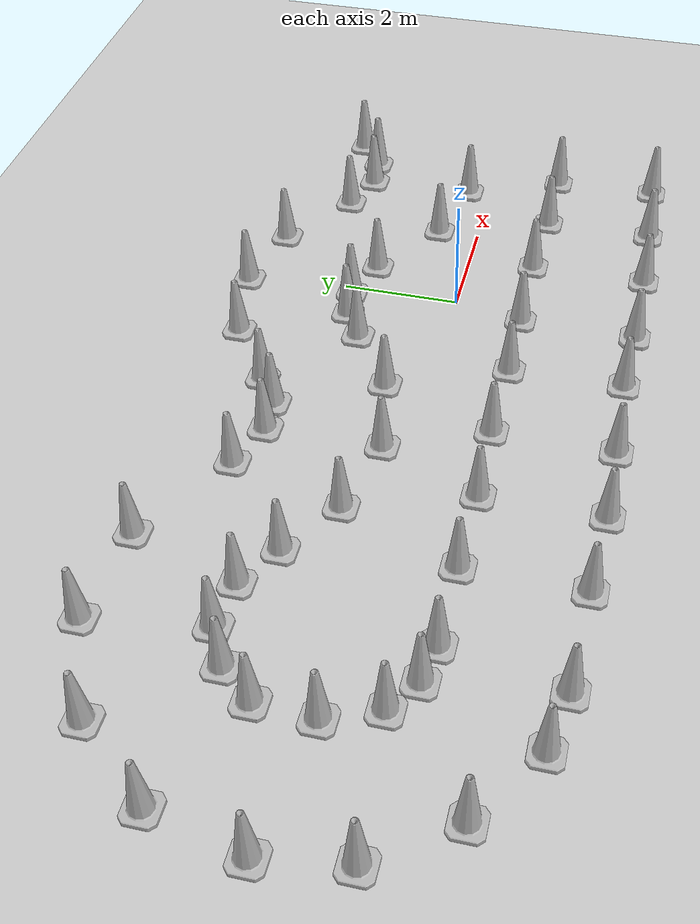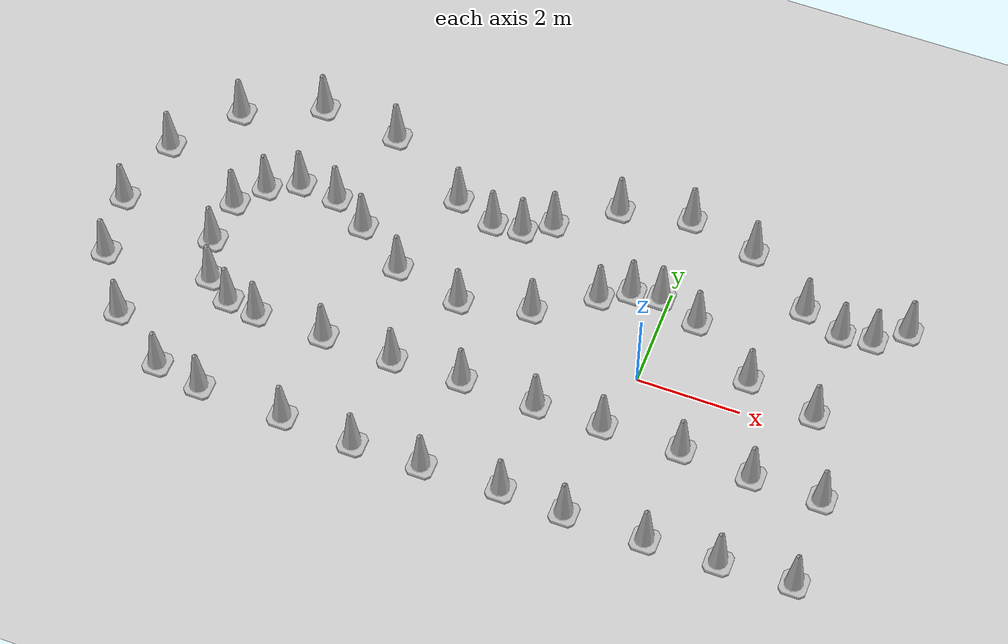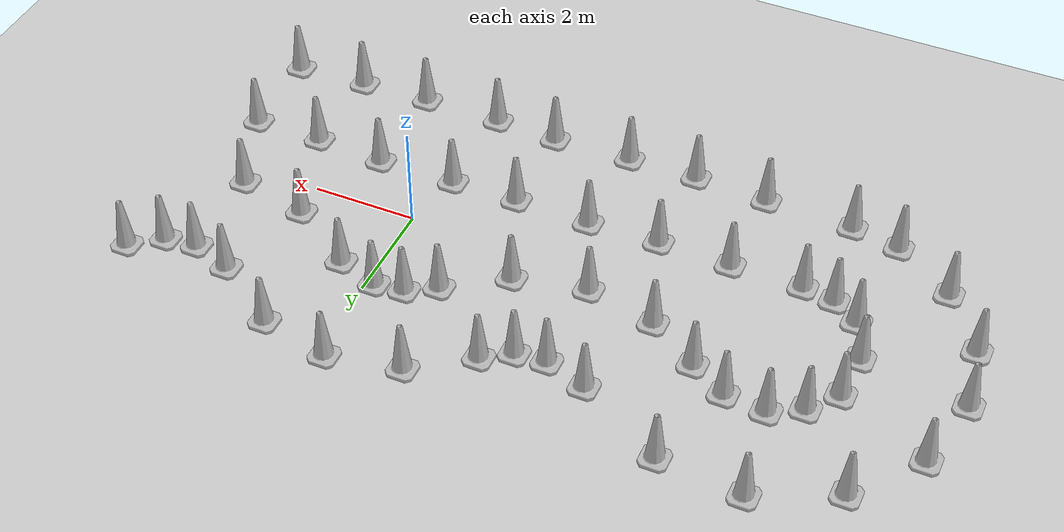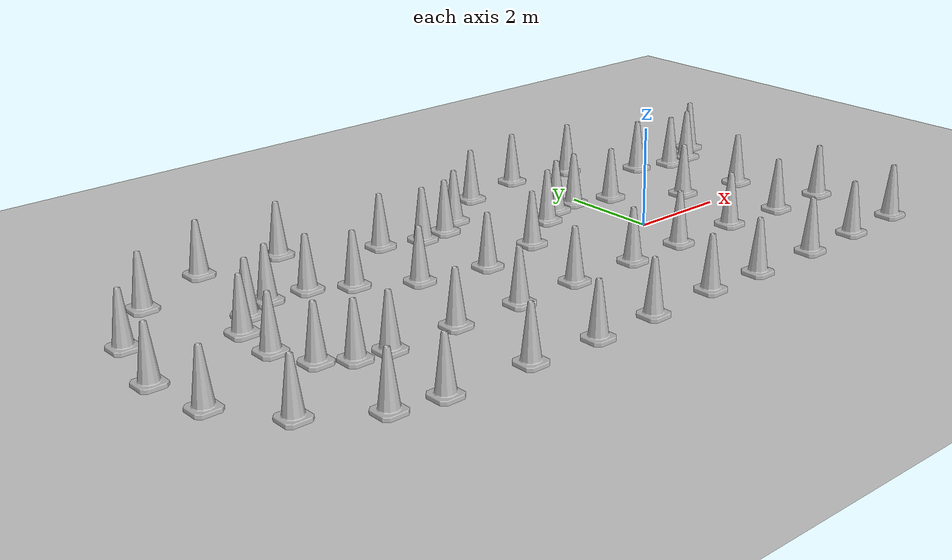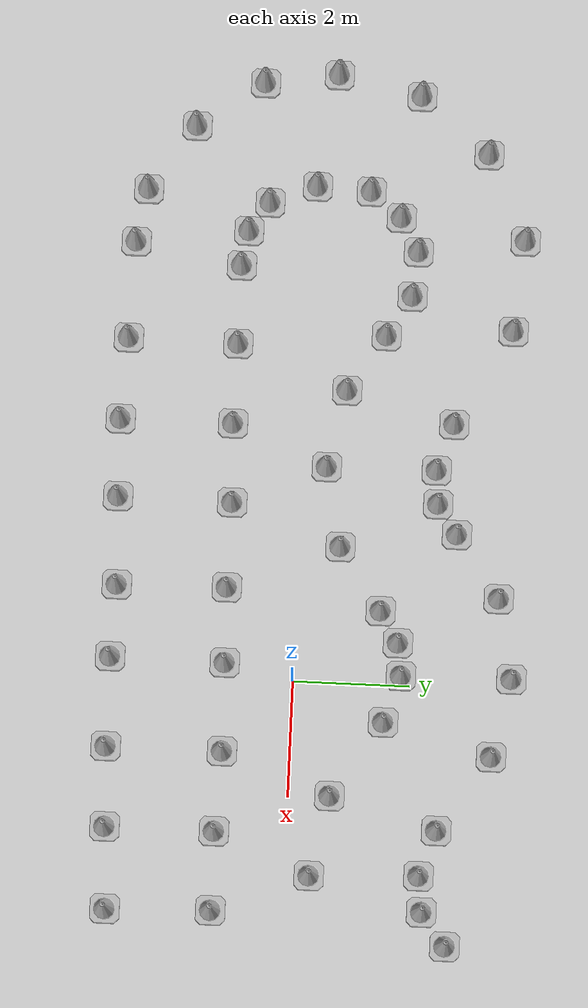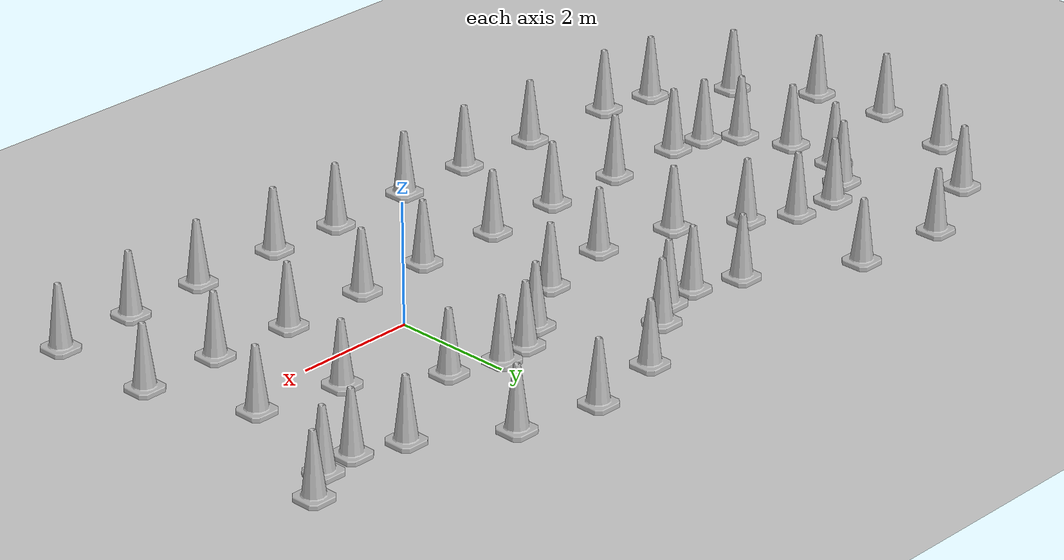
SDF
<sdf version="1.6">
 <world name="default">
  <model name="ground_plane">
   <static>1</static>
   <link name="link">
    <collision name="collision">
     <geometry><plane><normal>0 0 1</normal><size>100 100</size></plane></geometry>
     <surface><friction><ode><mu>100</mu><mu2>50</mu2></ode></friction></surface>
    </collision>
    <visual name="visual">
     <cast_shadows>0</cast_shadows>
     <geometry><plane><normal>0 0 1</normal><size>100 100</size></plane></geometry>
     <material>
      <script><uri>file://media/materials/scripts/gazebo.material</uri><name>Gazebo/Grey</name></script>
     </material>
    </visual>
   </link>
  </model>
  <model name="red_model_2">
   <link name="link">
    <collision name="collision">
     <geometry>
      <mesh><scale>10 10 10</scale><uri>model://construction_cone_red/meshes/construction_cone.dae</uri></mesh>
     </geometry>
    </collision>
    <visual name="visual">
     <geometry>
      <mesh><scale>10 10 10</scale><uri>model://construction_cone_red/meshes/construction_cone.dae</uri></mesh>
     </geometry>
    </visual>
    <inertial>
     <inertia><ixx>1</ixx><ixy>0</ixy><ixz>0</ixz><iyy>1</iyy><iyz>0</iyz><izz>1</izz></inertia>
     <mass>1</mass>
    </inertial>
   </link>
   <pose>3.9852 -1.23 -0 0 -1e-06 0</pose>
  </model>
  <model name="red_model_3">
   <link name="link">
    <collision name="collision">
     <geometry>
      <mesh><scale>10 10 10</scale><uri>model://construction_cone_red/meshes/construction_cone.dae</uri></mesh>
     </geometry>
    </collision>
    <visual name="visual">
     <geometry>
      <mesh><scale>10 10 10</scale><uri>model://construction_cone_red/meshes/construction_cone.dae</uri></mesh>
     </geometry>
    </visual>
    <inertial>
     <inertia><ixx>1</ixx><ixy>0</ixy><ixz>0</ixz><iyy>1</iyy><iyz>0</iyz><izz>1</izz></inertia>
     <mass>1</mass>
    </inertial>
   </link>
   <pose>2.6322 -1.23 -0 0 -1e-06 0</pose>
  </model>
  <model name="red_model_4">
   <link name="link">
    <collision name="collision">
     <geometry>
      <mesh><scale>10 10 10</scale><uri>model://construction_cone_red/meshes/construction_cone.dae</uri></mesh>
     </geometry>
    </collision>
    <visual name="visual">
     <geometry>
      <mesh><scale>10 10 10</scale><uri>model://construction_cone_red/meshes/construction_cone.dae</uri></mesh>
     </geometry>
    </visual>
    <inertial>
     <inertia><ixx>1</ixx><ixy>0</ixy><ixz>0</ixz><iyy>1</iyy><iyz>0</iyz><izz>1</izz></inertia>
     <mass>1</mass>
    </inertial>
   </link>
   <pose>1.2546 -1.1562 -0 0 -1e-06 0</pose>
  </model>
  <model name="red_model_5">
   <link name="link">
    <collision name="collision">
     <geometry>
      <mesh><scale>10 10 10</scale><uri>model://construction_cone_red/meshes/construction_cone.dae</uri></mesh>
     </geometry>
    </collision>
    <visual name="visual">
     <geometry>
      <mesh><scale>10 10 10</scale><uri>model://construction_cone_red/meshes/construction_cone.dae</uri></mesh>
     </geometry>
    </visual>
    <inertial>
     <inertia><ixx>1</ixx><ixy>0</ixy><ixz>0</ixz><iyy>1</iyy><iyz>0</iyz><izz>1</izz></inertia>
     <mass>1</mass>
    </inertial>
   </link>
   <pose>-0.2706 -1.1808 -0 0 -0 0</pose>
  </model>
  <model name="red_model_6">
   <link name="link">
    <collision name="collision">
     <geometry>
      <mesh><scale>10 10 10</scale><uri>model://construction_cone_red/meshes/construction_cone.dae</uri></mesh>
     </geometry>
    </collision>
    <visual name="visual">
     <geometry>
      <mesh><scale>10 10 10</scale><uri>model://construction_cone_red/meshes/construction_cone.dae</uri></mesh>
     </geometry>
    </visual>
    <inertial>
     <inertia><ixx>1</ixx><ixy>0</ixy><ixz>0</ixz><iyy>1</iyy><iyz>0</iyz><izz>1</izz></inertia>
     <mass>1</mass>
    </inertial>
   </link>
   <pose>-1.5744 -1.2054 -0 0 -1e-06 0</pose>
  </model>
  <model name="red_model_7">
   <link name="link">
    <collision name="collision">
     <geometry>
      <mesh><scale>10 10 10</scale><uri>model://construction_cone_red/meshes/construction_cone.dae</uri></mesh>
     </geometry>
    </collision>
    <visual name="visual">
     <geometry>
      <mesh><scale>10 10 10</scale><uri>model://construction_cone_red/meshes/construction_cone.dae</uri></mesh>
     </geometry>
    </visual>
    <inertial>
     <inertia><ixx>1</ixx><ixy>0</ixy><ixz>0</ixz><iyy>1</iyy><iyz>0</iyz><izz>1</izz></inertia>
     <mass>1</mass>
    </inertial>
   </link>
   <pose>-3.0504 -1.1808 -0 0 -1e-06 0</pose>
  </model>
  <model name="red_model_8">
   <link name="link">
    <collision name="collision">
     <geometry>
      <mesh><scale>10 10 10</scale><uri>model://construction_cone_red/meshes/construction_cone.dae</uri></mesh>
     </geometry>
    </collision>
    <visual name="visual">
     <geometry>
      <mesh><scale>10 10 10</scale><uri>model://construction_cone_red/meshes/construction_cone.dae</uri></mesh>
     </geometry>
    </visual>
    <inertial>
     <inertia><ixx>1</ixx><ixy>0</ixy><ixz>0</ixz><iyy>1</iyy><iyz>0</iyz><izz>1</izz></inertia>
     <mass>1</mass>
    </inertial>
   </link>
   <pose>-4.428 -1.23 -0 0 -1e-06 0</pose>
  </model>
  <model name="red_model_9">
   <link name="link">
    <collision name="collision">
     <geometry>
      <mesh><scale>10 10 10</scale><uri>model://construction_cone_red/meshes/construction_cone.dae</uri></mesh>
     </geometry>
    </collision>
    <visual name="visual">
     <geometry>
      <mesh><scale>10 10 10</scale><uri>model://construction_cone_red/meshes/construction_cone.dae</uri></mesh>
     </geometry>
    </visual>
    <inertial>
     <inertia><ixx>1</ixx><ixy>0</ixy><ixz>0</ixz><iyy>1</iyy><iyz>0</iyz><izz>1</izz></inertia>
     <mass>1</mass>
    </inertial>
   </link>
   <pose>-5.8302 -1.2054 -0 0 -1e-06 0</pose>
  </model>
  <model name="red_model_10">
   <link name="link">
    <collision name="collision">
     <geometry>
      <mesh><scale>10 10 10</scale><uri>model://construction_cone_red/meshes/construction_cone.dae</uri></mesh>
     </geometry>
    </collision>
    <visual name="visual">
     <geometry>
      <mesh><scale>10 10 10</scale><uri>model://construction_cone_red/meshes/construction_cone.dae</uri></mesh>
     </geometry>
    </visual>
    <inertial>
     <inertia><ixx>1</ixx><ixy>0</ixy><ixz>0</ixz><iyy>1</iyy><iyz>0</iyz><izz>1</izz></inertia>
     <mass>1</mass>
    </inertial>
   </link>
   <pose>-7.2078 -1.2054 -0 0 -1e-06 0</pose>
  </model>
  <model name="red_model_11">
   <link name="link">
    <collision name="collision">
     <geometry>
      <mesh><scale>10 10 10</scale><uri>model://construction_cone_red/meshes/construction_cone.dae</uri></mesh>
     </geometry>
    </collision>
    <visual name="visual">
     <geometry>
      <mesh><scale>10 10 10</scale><uri>model://construction_cone_red/meshes/construction_cone.dae</uri></mesh>
     </geometry>
    </visual>
    <inertial>
     <inertia><ixx>1</ixx><ixy>0</ixy><ixz>0</ixz><iyy>1</iyy><iyz>0</iyz><izz>1</izz></inertia>
     <mass>1</mass>
    </inertial>
   </link>
   <pose>-7.8228 -1.107 -0 0 -1e-06 0</pose>
  </model>
  <model name="red_model_12">
   <link name="link">
    <collision name="collision">
     <geometry>
      <mesh><scale>10 10 10</scale><uri>model://construction_cone_red/meshes/construction_cone.dae</uri></mesh>
     </geometry>
    </collision>
    <visual name="visual">
     <geometry>
      <mesh><scale>10 10 10</scale><uri>model://construction_cone_red/meshes/construction_cone.dae</uri></mesh>
     </geometry>
    </visual>
    <inertial>
     <inertia><ixx>1</ixx><ixy>0</ixy><ixz>0</ixz><iyy>1</iyy><iyz>0</iyz><izz>1</izz></inertia>
     <mass>1</mass>
    </inertial>
   </link>
   <pose>-8.3394 -0.7626 -8e-06 1e-06 -0 0</pose>
  </model>
  <model name="red_model_13">
   <link name="link">
    <collision name="collision">
     <geometry>
      <mesh><scale>10 10 10</scale><uri>model://construction_cone_red/meshes/construction_cone.dae</uri></mesh>
     </geometry>
    </collision>
    <visual name="visual">
     <geometry>
      <mesh><scale>10 10 10</scale><uri>model://construction_cone_red/meshes/construction_cone.dae</uri></mesh>
     </geometry>
    </visual>
    <inertial>
     <inertia><ixx>1</ixx><ixy>0</ixy><ixz>0</ixz><iyy>1</iyy><iyz>0</iyz><izz>1</izz></inertia>
     <mass>1</mass>
    </inertial>
   </link>
   <pose>3.321 0.4182 -0 0 -0 0</pose>
  </model>
  <model name="red_model_14">
   <link name="link">
    <collision name="collision">
     <geometry>
      <mesh><scale>10 10 10</scale><uri>model://construction_cone_red/meshes/construction_cone.dae</uri></mesh>
     </geometry>
    </collision>
    <visual name="visual">
     <geometry>
      <mesh><scale>10 10 10</scale><uri>model://construction_cone_red/meshes/construction_cone.dae</uri></mesh>
     </geometry>
    </visual>
    <inertial>
     <inertia><ixx>1</ixx><ixy>0</ixy><ixz>0</ixz><iyy>1</iyy><iyz>0</iyz><izz>1</izz></inertia>
     <mass>1</mass>
    </inertial>
   </link>
   <pose>-8.6592 0.0492 -0 0 -1e-06 0</pose>
  </model>
  <model name="red_model_15">
   <link name="link">
    <collision name="collision">
     <geometry>
      <mesh><scale>10 10 10</scale><uri>model://construction_cone_red/meshes/construction_cone.dae</uri></mesh>
     </geometry>
    </collision>
    <visual name="visual">
     <geometry>
      <mesh><scale>10 10 10</scale><uri>model://construction_cone_red/meshes/construction_cone.dae</uri></mesh>
     </geometry>
    </visual>
    <inertial>
     <inertia><ixx>1</ixx><ixy>0</ixy><ixz>0</ixz><iyy>1</iyy><iyz>0</iyz><izz>1</izz></inertia>
     <mass>1</mass>
    </inertial>
   </link>
   <pose>-3.7392 0.4182 0 -0 -0 -0</pose>
  </model>
  <model name="red_model_17">
   <link name="link">
    <collision name="collision">
     <geometry>
      <mesh><scale>10 10 10</scale><uri>model://construction_cone_red/meshes/construction_cone.dae</uri></mesh>
     </geometry>
    </collision>
    <visual name="visual">
     <geometry>
      <mesh><scale>10 10 10</scale><uri>model://construction_cone_red/meshes/construction_cone.dae</uri></mesh>
     </geometry>
    </visual>
    <inertial>
     <inertia><ixx>1</ixx><ixy>0</ixy><ixz>0</ixz><iyy>1</iyy><iyz>0</iyz><izz>1</izz></inertia>
     <mass>1</mass>
    </inertial>
   </link>
   <pose>1.9434 0.7134 -0 0 -1e-06 0</pose>
  </model>
  <model name="red_model_18">
   <link name="link">
    <collision name="collision">
     <geometry>
      <mesh><scale>10 10 10</scale><uri>model://construction_cone_red/meshes/construction_cone.dae</uri></mesh>
     </geometry>
    </collision>
    <visual name="visual">
     <geometry>
      <mesh><scale>10 10 10</scale><uri>model://construction_cone_red/meshes/construction_cone.dae</uri></mesh>
     </geometry>
    </visual>
    <inertial>
     <inertia><ixx>1</ixx><ixy>0</ixy><ixz>0</ixz><iyy>1</iyy><iyz>0</iyz><izz>1</izz></inertia>
     <mass>1</mass>
    </inertial>
   </link>
   <pose>-2.3616 0.7134 -0 0 -1e-06 0</pose>
  </model>
  <model name="red_model_19">
   <link name="link">
    <collision name="collision">
     <geometry>
      <mesh><scale>10 10 10</scale><uri>model://construction_cone_red/meshes/construction_cone.dae</uri></mesh>
     </geometry>
    </collision>
    <visual name="visual">
     <geometry>
      <mesh><scale>10 10 10</scale><uri>model://construction_cone_red/meshes/construction_cone.dae</uri></mesh>
     </geometry>
    </visual>
    <inertial>
     <inertia><ixx>1</ixx><ixy>0</ixy><ixz>0</ixz><iyy>1</iyy><iyz>0</iyz><izz>1</izz></inertia>
     <mass>1</mass>
    </inertial>
   </link>
   <pose>-5.0922 0.7134 -9e-06 0 -0 0</pose>
  </model>
  <model name="red_model_20">
   <link name="link">
    <collision name="collision">
     <geometry>
      <mesh><scale>10 10 10</scale><uri>model://construction_cone_red/meshes/construction_cone.dae</uri></mesh>
     </geometry>
    </collision>
    <visual name="visual">
     <geometry>
      <mesh><scale>10 10 10</scale><uri>model://construction_cone_red/meshes/construction_cone.dae</uri></mesh>
     </geometry>
    </visual>
    <inertial>
     <inertia><ixx>1</ixx><ixy>0</ixy><ixz>0</ixz><iyy>1</iyy><iyz>0</iyz><izz>1</izz></inertia>
     <mass>1</mass>
    </inertial>
   </link>
   <pose>-8.61 0.984 -0 0 -1e-06 0</pose>
  </model>
  <model name="red_model_21">
   <link name="link">
    <collision name="collision">
     <geometry>
      <mesh><scale>10 10 10</scale><uri>model://construction_cone_red/meshes/construction_cone.dae</uri></mesh>
     </geometry>
    </collision>
    <visual name="visual">
     <geometry>
      <mesh><scale>10 10 10</scale><uri>model://construction_cone_red/meshes/construction_cone.dae</uri></mesh>
     </geometry>
    </visual>
    <inertial>
     <inertia><ixx>1</ixx><ixy>0</ixy><ixz>0</ixz><iyy>1</iyy><iyz>0</iyz><izz>1</izz></inertia>
     <mass>1</mass>
    </inertial>
   </link>
   <pose>-1.2792 1.4514 -9e-06 0 -0 0</pose>
  </model>
  <model name="red_model_22">
   <link name="link">
    <collision name="collision">
     <geometry>
      <mesh><scale>10 10 10</scale><uri>model://construction_cone_red/meshes/construction_cone.dae</uri></mesh>
     </geometry>
    </collision>
    <visual name="visual">
     <geometry>
      <mesh><scale>10 10 10</scale><uri>model://construction_cone_red/meshes/construction_cone.dae</uri></mesh>
     </geometry>
    </visual>
    <inertial>
     <inertia><ixx>1</ixx><ixy>0</ixy><ixz>0</ixz><iyy>1</iyy><iyz>0</iyz><izz>1</izz></inertia>
     <mass>1</mass>
    </inertial>
   </link>
   <pose>-6.0762 1.353 -0 0 -1e-06 0</pose>
  </model>
  <model name="red_model_24">
   <link name="link">
    <collision name="collision">
     <geometry>
      <mesh><scale>10 10 10</scale><uri>model://construction_cone_red/meshes/construction_cone.dae</uri></mesh>
     </geometry>
    </collision>
    <visual name="visual">
     <geometry>
      <mesh><scale>10 10 10</scale><uri>model://construction_cone_red/meshes/construction_cone.dae</uri></mesh>
     </geometry>
    </visual>
    <inertial>
     <inertia><ixx>1</ixx><ixy>0</ixy><ixz>0</ixz><iyy>1</iyy><iyz>0</iyz><izz>1</izz></inertia>
     <mass>1</mass>
    </inertial>
   </link>
   <pose>-8.1672 1.5252 -0 0 -0 0</pose>
  </model>
  <model name="red_model_25">
   <link name="link">
    <collision name="collision">
     <geometry>
      <mesh><scale>10 10 10</scale><uri>model://construction_cone_red/meshes/construction_cone.dae</uri></mesh>
     </geometry>
    </collision>
    <visual name="visual">
     <geometry>
      <mesh><scale>10 10 10</scale><uri>model://construction_cone_red/meshes/construction_cone.dae</uri></mesh>
     </geometry>
    </visual>
    <inertial>
     <inertia><ixx>1</ixx><ixy>0</ixy><ixz>0</ixz><iyy>1</iyy><iyz>0</iyz><izz>1</izz></inertia>
     <mass>1</mass>
    </inertial>
   </link>
   <pose>0.6396 1.5744 -0 0 -1e-06 0</pose>
  </model>
  <model name="red_model_26">
   <link name="link">
    <collision name="collision">
     <geometry>
      <mesh><scale>10 10 10</scale><uri>model://construction_cone_red/meshes/construction_cone.dae</uri></mesh>
     </geometry>
    </collision>
    <visual name="visual">
     <geometry>
      <mesh><scale>10 10 10</scale><uri>model://construction_cone_red/meshes/construction_cone.dae</uri></mesh>
     </geometry>
    </visual>
    <inertial>
     <inertia><ixx>1</ixx><ixy>0</ixy><ixz>0</ixz><iyy>1</iyy><iyz>0</iyz><izz>1</izz></inertia>
     <mass>1</mass>
    </inertial>
   </link>
   <pose>-0.738 1.7712 -0 0 -0 0</pose>
  </model>
  <model name="red_model_28">
   <link name="link">
    <collision name="collision">
     <geometry>
      <mesh><scale>10 10 10</scale><uri>model://construction_cone_red/meshes/construction_cone.dae</uri></mesh>
     </geometry>
    </collision>
    <visual name="visual">
     <geometry>
      <mesh><scale>10 10 10</scale><uri>model://construction_cone_red/meshes/construction_cone.dae</uri></mesh>
     </geometry>
    </visual>
    <inertial>
     <inertia><ixx>1</ixx><ixy>0</ixy><ixz>0</ixz><iyy>1</iyy><iyz>0</iyz><izz>1</izz></inertia>
     <mass>1</mass>
    </inertial>
   </link>
   <pose>-6.7896 1.7712 -0 0 -1e-06 0</pose>
  </model>
  <model name="red_model_29">
   <link name="link">
    <collision name="collision">
     <geometry>
      <mesh><scale>10 10 10</scale><uri>model://construction_cone_red/meshes/construction_cone.dae</uri></mesh>
     </geometry>
    </collision>
    <visual name="visual">
     <geometry>
      <mesh><scale>10 10 10</scale><uri>model://construction_cone_red/meshes/construction_cone.dae</uri></mesh>
     </geometry>
    </visual>
    <inertial>
     <inertia><ixx>1</ixx><ixy>0</ixy><ixz>0</ixz><iyy>1</iyy><iyz>0</iyz><izz>1</izz></inertia>
     <mass>1</mass>
    </inertial>
   </link>
   <pose>-7.5768 1.845 -0 0 -1e-06 0</pose>
  </model>
  <model name="red_model_31">
   <link name="link">
    <collision name="collision">
     <geometry>
      <mesh><scale>10 10 10</scale><uri>model://construction_cone_red/meshes/construction_cone.dae</uri></mesh>
     </geometry>
    </collision>
    <visual name="visual">
     <geometry>
      <mesh><scale>10 10 10</scale><uri>model://construction_cone_red/meshes/construction_cone.dae</uri></mesh>
     </geometry>
    </visual>
    <inertial>
     <inertia><ixx>1</ixx><ixy>0</ixy><ixz>0</ixz><iyy>1</iyy><iyz>0</iyz><izz>1</izz></inertia>
     <mass>1</mass>
    </inertial>
   </link>
   <pose>-0.1722 1.845 -0 -0 -0 -0</pose>
  </model>
  <model name="blue_model_0">
   <link name="link">
    <collision name="collision">
     <geometry>
      <mesh><scale>10 10 10</scale><uri>model://construction_cone_blue/meshes/construction_cone.dae</uri></mesh>
     </geometry>
    </collision>
    <visual name="visual">
     <geometry>
      <mesh><scale>10 10 10</scale><uri>model://construction_cone_blue/meshes/construction_cone.dae</uri></mesh>
     </geometry>
    </visual>
    <inertial>
     <inertia><ixx>1</ixx><ixy>0</ixy><ixz>0</ixz><iyy>1</iyy><iyz>0</iyz><izz>1</izz></inertia>
     <mass>1</mass>
    </inertial>
   </link>
   <pose>1.2546 -3.1488 -8e-06 1e-06 -0 0</pose>
  </model>
  <model name="blue_model_1">
   <link name="link">
    <collision name="collision">
     <geometry>
      <mesh><scale>10 10 10</scale><uri>model://construction_cone_blue/meshes/construction_cone.dae</uri></mesh>
     </geometry>
    </collision>
    <visual name="visual">
     <geometry>
      <mesh><scale>10 10 10</scale><uri>model://construction_cone_blue/meshes/construction_cone.dae</uri></mesh>
     </geometry>
    </visual>
    <inertial>
     <inertia><ixx>1</ixx><ixy>0</ixy><ixz>0</ixz><iyy>1</iyy><iyz>0</iyz><izz>1</izz></inertia>
     <mass>1</mass>
    </inertial>
   </link>
   <pose>-0.2952 -3.1488 -0 0 -1e-06 0</pose>
  </model>
  <model name="blue_model_2">
   <link name="link">
    <collision name="collision">
     <geometry>
      <mesh><scale>10 10 10</scale><uri>model://construction_cone_blue/meshes/construction_cone.dae</uri></mesh>
     </geometry>
    </collision>
    <visual name="visual">
     <geometry>
      <mesh><scale>10 10 10</scale><uri>model://construction_cone_blue/meshes/construction_cone.dae</uri></mesh>
     </geometry>
    </visual>
    <inertial>
     <inertia><ixx>1</ixx><ixy>0</ixy><ixz>0</ixz><iyy>1</iyy><iyz>0</iyz><izz>1</izz></inertia>
     <mass>1</mass>
    </inertial>
   </link>
   <pose>-3.075 -3.1488 -0 0 -1e-06 0</pose>
  </model>
  <model name="blue_model_4">
   <link name="link">
    <collision name="collision">
     <geometry>
      <mesh><scale>10 10 10</scale><uri>model://construction_cone_blue/meshes/construction_cone.dae</uri></mesh>
     </geometry>
    </collision>
    <visual name="visual">
     <geometry>
      <mesh><scale>10 10 10</scale><uri>model://construction_cone_blue/meshes/construction_cone.dae</uri></mesh>
     </geometry>
    </visual>
    <inertial>
     <inertia><ixx>1</ixx><ixy>0</ixy><ixz>0</ixz><iyy>1</iyy><iyz>0</iyz><izz>1</izz></inertia>
     <mass>1</mass>
    </inertial>
   </link>
   <pose>2.6322 -3.0996 -0 0 -1e-06 0</pose>
  </model>
  <model name="blue_model_5">
   <link name="link">
    <collision name="collision">
     <geometry>
      <mesh><scale>10 10 10</scale><uri>model://construction_cone_blue/meshes/construction_cone.dae</uri></mesh>
     </geometry>
    </collision>
    <visual name="visual">
     <geometry>
      <mesh><scale>10 10 10</scale><uri>model://construction_cone_blue/meshes/construction_cone.dae</uri></mesh>
     </geometry>
    </visual>
    <inertial>
     <inertia><ixx>1</ixx><ixy>0</ixy><ixz>0</ixz><iyy>1</iyy><iyz>0</iyz><izz>1</izz></inertia>
     <mass>1</mass>
    </inertial>
   </link>
   <pose>-4.42764 -3.17179 -0 0 0 -0.003223</pose>
  </model>
  <model name="blue_model_6">
   <link name="link">
    <collision name="collision">
     <geometry>
      <mesh><scale>10 10 10</scale><uri>model://construction_cone_blue/meshes/construction_cone.dae</uri></mesh>
     </geometry>
    </collision>
    <visual name="visual">
     <geometry>
      <mesh><scale>10 10 10</scale><uri>model://construction_cone_blue/meshes/construction_cone.dae</uri></mesh>
     </geometry>
    </visual>
    <inertial>
     <inertia><ixx>1</ixx><ixy>0</ixy><ixz>0</ixz><iyy>1</iyy><iyz>0</iyz><izz>1</izz></inertia>
     <mass>1</mass>
    </inertial>
   </link>
   <pose>-5.8548 -3.0996 -0 0 -0 0</pose>
  </model>
  <model name="blue_model_7">
   <link name="link">
    <collision name="collision">
     <geometry>
      <mesh><scale>10 10 10</scale><uri>model://construction_cone_blue/meshes/construction_cone.dae</uri></mesh>
     </geometry>
    </collision>
    <visual name="visual">
     <geometry>
      <mesh><scale>10 10 10</scale><uri>model://construction_cone_blue/meshes/construction_cone.dae</uri></mesh>
     </geometry>
    </visual>
    <inertial>
     <inertia><ixx>1</ixx><ixy>0</ixy><ixz>0</ixz><iyy>1</iyy><iyz>0</iyz><izz>1</izz></inertia>
     <mass>1</mass>
    </inertial>
   </link>
   <pose>-7.5522 -3.0504 -0 0 -1e-06 0</pose>
  </model>
  <model name="blue_model_8">
   <link name="link">
    <collision name="collision">
     <geometry>
      <mesh><scale>10 10 10</scale><uri>model://construction_cone_blue/meshes/construction_cone.dae</uri></mesh>
     </geometry>
    </collision>
    <visual name="visual">
     <geometry>
      <mesh><scale>10 10 10</scale><uri>model://construction_cone_blue/meshes/construction_cone.dae</uri></mesh>
     </geometry>
    </visual>
    <inertial>
     <inertia><ixx>1</ixx><ixy>0</ixy><ixz>0</ixz><iyy>1</iyy><iyz>0</iyz><izz>1</izz></inertia>
     <mass>1</mass>
    </inertial>
   </link>
   <pose>-8.487 -2.8782 -0 0 -1e-06 0</pose>
  </model>
  <model name="blue_model_11">
   <link name="link">
    <collision name="collision">
     <geometry>
      <mesh><scale>10 10 10</scale><uri>model://construction_cone_blue/meshes/construction_cone.dae</uri></mesh>
     </geometry>
    </collision>
    <visual name="visual">
     <geometry>
      <mesh><scale>10 10 10</scale><uri>model://construction_cone_blue/meshes/construction_cone.dae</uri></mesh>
     </geometry>
    </visual>
    <inertial>
     <inertia><ixx>1</ixx><ixy>0</ixy><ixz>0</ixz><iyy>1</iyy><iyz>0</iyz><izz>1</izz></inertia>
     <mass>1</mass>
    </inertial>
   </link>
   <pose>-9.6432 -2.091 -1e-05 -0 -0 -0</pose>
  </model>
  <model name="blue_model_13">
   <link name="link">
    <collision name="collision">
     <geometry>
      <mesh><scale>10 10 10</scale><uri>model://construction_cone_blue/meshes/construction_cone.dae</uri></mesh>
     </geometry>
    </collision>
    <visual name="visual">
     <geometry>
      <mesh><scale>10 10 10</scale><uri>model://construction_cone_blue/meshes/construction_cone.dae</uri></mesh>
     </geometry>
    </visual>
    <inertial>
     <inertia><ixx>1</ixx><ixy>0</ixy><ixz>0</ixz><iyy>1</iyy><iyz>0</iyz><izz>1</izz></inertia>
     <mass>1</mass>
    </inertial>
   </link>
   <pose>-10.455 -0.9348 -0 0 -1e-06 0</pose>
  </model>
  <model name="blue_model_14">
   <link name="link">
    <collision name="collision">
     <geometry>
      <mesh><scale>10 10 10</scale><uri>model://construction_cone_blue/meshes/construction_cone.dae</uri></mesh>
     </geometry>
    </collision>
    <visual name="visual">
     <geometry>
      <mesh><scale>10 10 10</scale><uri>model://construction_cone_blue/meshes/construction_cone.dae</uri></mesh>
     </geometry>
    </visual>
    <inertial>
     <inertia><ixx>1</ixx><ixy>0</ixy><ixz>0</ixz><iyy>1</iyy><iyz>0</iyz><izz>1</izz></inertia>
     <mass>1</mass>
    </inertial>
   </link>
   <pose>-10.6518 0.3444 -0 0 -1e-06 0</pose>
  </model>
  <model name="blue_model_15">
   <link name="link">
    <collision name="collision">
     <geometry>
      <mesh><scale>10 10 10</scale><uri>model://construction_cone_blue/meshes/construction_cone.dae</uri></mesh>
     </geometry>
    </collision>
    <visual name="visual">
     <geometry>
      <mesh><scale>10 10 10</scale><uri>model://construction_cone_blue/meshes/construction_cone.dae</uri></mesh>
     </geometry>
    </visual>
    <inertial>
     <inertia><ixx>1</ixx><ixy>0</ixy><ixz>0</ixz><iyy>1</iyy><iyz>0</iyz><izz>1</izz></inertia>
     <mass>1</mass>
    </inertial>
   </link>
   <pose>-10.332 1.7958 -0 -0 -0 -0</pose>
  </model>
  <model name="blue_model_16">
   <link name="link">
    <collision name="collision">
     <geometry>
      <mesh><scale>10 10 10</scale><uri>model://construction_cone_blue/meshes/construction_cone.dae</uri></mesh>
     </geometry>
    </collision>
    <visual name="visual">
     <geometry>
      <mesh><scale>10 10 10</scale><uri>model://construction_cone_blue/meshes/construction_cone.dae</uri></mesh>
     </geometry>
    </visual>
    <inertial>
     <inertia><ixx>1</ixx><ixy>0</ixy><ixz>0</ixz><iyy>1</iyy><iyz>0</iyz><izz>1</izz></inertia>
     <mass>1</mass>
    </inertial>
   </link>
   <pose>3.2472 2.2878 -0 0 -1e-06 0</pose>
  </model>
  <model name="blue_model_17">
   <link name="link">
    <collision name="collision">
     <geometry>
      <mesh><scale>10 10 10</scale><uri>model://construction_cone_blue/meshes/construction_cone.dae</uri></mesh>
     </geometry>
    </collision>
    <visual name="visual">
     <geometry>
      <mesh><scale>10 10 10</scale><uri>model://construction_cone_blue/meshes/construction_cone.dae</uri></mesh>
     </geometry>
    </visual>
    <inertial>
     <inertia><ixx>1</ixx><ixy>0</ixy><ixz>0</ixz><iyy>1</iyy><iyz>0</iyz><izz>1</izz></inertia>
     <mass>1</mass>
    </inertial>
   </link>
   <pose>-3.7638 2.3124 -0 0 -0 0</pose>
  </model>
  <model name="blue_model_18">
   <link name="link">
    <collision name="collision">
     <geometry>
      <mesh><scale>10 10 10</scale><uri>model://construction_cone_blue/meshes/construction_cone.dae</uri></mesh>
     </geometry>
    </collision>
    <visual name="visual">
     <geometry>
      <mesh><scale>10 10 10</scale><uri>model://construction_cone_blue/meshes/construction_cone.dae</uri></mesh>
     </geometry>
    </visual>
    <inertial>
     <inertia><ixx>1</ixx><ixy>0</ixy><ixz>0</ixz><iyy>1</iyy><iyz>0</iyz><izz>1</izz></inertia>
     <mass>1</mass>
    </inertial>
   </link>
   <pose>3.8622 2.3616 -1e-05 0 -0 0</pose>
  </model>
  <model name="blue_model_19">
   <link name="link">
    <collision name="collision">
     <geometry>
      <mesh><scale>10 10 10</scale><uri>model://construction_cone_blue/meshes/construction_cone.dae</uri></mesh>
     </geometry>
    </collision>
    <visual name="visual">
     <geometry>
      <mesh><scale>10 10 10</scale><uri>model://construction_cone_blue/meshes/construction_cone.dae</uri></mesh>
     </geometry>
    </visual>
    <inertial>
     <inertia><ixx>1</ixx><ixy>0</ixy><ixz>0</ixz><iyy>1</iyy><iyz>0</iyz><izz>1</izz></inertia>
     <mass>1</mass>
    </inertial>
   </link>
   <pose>-3.1734 2.3616 -1e-05 0 -0 0</pose>
  </model>
  <model name="blue_model_20">
   <link name="link">
    <collision name="collision">
     <geometry>
      <mesh><scale>10 10 10</scale><uri>model://construction_cone_blue/meshes/construction_cone.dae</uri></mesh>
     </geometry>
    </collision>
    <visual name="visual">
     <geometry>
      <mesh><scale>10 10 10</scale><uri>model://construction_cone_blue/meshes/construction_cone.dae</uri></mesh>
     </geometry>
    </visual>
    <inertial>
     <inertia><ixx>1</ixx><ixy>0</ixy><ixz>0</ixz><iyy>1</iyy><iyz>0</iyz><izz>1</izz></inertia>
     <mass>1</mass>
    </inertial>
   </link>
   <pose>2.46 2.5584 -0 0 -0 0</pose>
  </model>
  <model name="blue_model_21">
   <link name="link">
    <collision name="collision">
     <geometry>
      <mesh><scale>10 10 10</scale><uri>model://construction_cone_blue/meshes/construction_cone.dae</uri></mesh>
     </geometry>
    </collision>
    <visual name="visual">
     <geometry>
      <mesh><scale>10 10 10</scale><uri>model://construction_cone_blue/meshes/construction_cone.dae</uri></mesh>
     </geometry>
    </visual>
    <inertial>
     <inertia><ixx>1</ixx><ixy>0</ixy><ixz>0</ixz><iyy>1</iyy><iyz>0</iyz><izz>1</izz></inertia>
     <mass>1</mass>
    </inertial>
   </link>
   <pose>-2.6568 2.706 -0 0 -1e-06 0</pose>
  </model>
  <model name="blue_model_22">
   <link name="link">
    <collision name="collision">
     <geometry>
      <mesh><scale>10 10 10</scale><uri>model://construction_cone_blue/meshes/construction_cone.dae</uri></mesh>
     </geometry>
    </collision>
    <visual name="visual">
     <geometry>
      <mesh><scale>10 10 10</scale><uri>model://construction_cone_blue/meshes/construction_cone.dae</uri></mesh>
     </geometry>
    </visual>
    <inertial>
     <inertia><ixx>1</ixx><ixy>0</ixy><ixz>0</ixz><iyy>1</iyy><iyz>0</iyz><izz>1</izz></inertia>
     <mass>1</mass>
    </inertial>
   </link>
   <pose>-4.5756 2.583 -0 0 -0 0</pose>
  </model>
  <model name="blue_model_23">
   <link name="link">
    <collision name="collision">
     <geometry>
      <mesh><scale>10 10 10</scale><uri>model://construction_cone_blue/meshes/construction_cone.dae</uri></mesh>
     </geometry>
    </collision>
    <visual name="visual">
     <geometry>
      <mesh><scale>10 10 10</scale><uri>model://construction_cone_blue/meshes/construction_cone.dae</uri></mesh>
     </geometry>
    </visual>
    <inertial>
     <inertia><ixx>1</ixx><ixy>0</ixy><ixz>0</ixz><iyy>1</iyy><iyz>0</iyz><izz>1</izz></inertia>
     <mass>1</mass>
    </inertial>
   </link>
   <pose>4.428 2.7798 -0 0 -1e-06 0</pose>
  </model>
  <model name="blue_model_24">
   <link name="link">
    <collision name="collision">
     <geometry>
      <mesh><scale>10 10 10</scale><uri>model://construction_cone_blue/meshes/construction_cone.dae</uri></mesh>
     </geometry>
    </collision>
    <visual name="visual">
     <geometry>
      <mesh><scale>10 10 10</scale><uri>model://construction_cone_blue/meshes/construction_cone.dae</uri></mesh>
     </geometry>
    </visual>
    <inertial>
     <inertia><ixx>1</ixx><ixy>0</ixy><ixz>0</ixz><iyy>1</iyy><iyz>0</iyz><izz>1</izz></inertia>
     <mass>1</mass>
    </inertial>
   </link>
   <pose>-9.348 3.0012 -0 0 -0 0</pose>
  </model>
  <model name="blue_model_25">
   <link name="link">
    <collision name="collision">
     <geometry>
      <mesh><scale>10 10 10</scale><uri>model://construction_cone_blue/meshes/construction_cone.dae</uri></mesh>
     </geometry>
    </collision>
    <visual name="visual">
     <geometry>
      <mesh><scale>10 10 10</scale><uri>model://construction_cone_blue/meshes/construction_cone.dae</uri></mesh>
     </geometry>
    </visual>
    <inertial>
     <inertia><ixx>1</ixx><ixy>0</ixy><ixz>0</ixz><iyy>1</iyy><iyz>0</iyz><izz>1</izz></inertia>
     <mass>1</mass>
    </inertial>
   </link>
   <pose>1.1562 3.444 -0 1e-06 -1e-06 0</pose>
  </model>
  <model name="blue_model_26">
   <link name="link">
    <collision name="collision">
     <geometry>
      <mesh><scale>10 10 10</scale><uri>model://construction_cone_blue/meshes/construction_cone.dae</uri></mesh>
     </geometry>
    </collision>
    <visual name="visual">
     <geometry>
      <mesh><scale>10 10 10</scale><uri>model://construction_cone_blue/meshes/construction_cone.dae</uri></mesh>
     </geometry>
    </visual>
    <inertial>
     <inertia><ixx>1</ixx><ixy>0</ixy><ixz>0</ixz><iyy>1</iyy><iyz>0</iyz><izz>1</izz></inertia>
     <mass>1</mass>
    </inertial>
   </link>
   <pose>-1.5744 3.4686 -0 0 -0 0</pose>
  </model>
  <model name="blue_model_28">
   <link name="link">
    <collision name="collision">
     <geometry>
      <mesh><scale>10 10 10</scale><uri>model://construction_cone_blue/meshes/construction_cone.dae</uri></mesh>
     </geometry>
    </collision>
    <visual name="visual">
     <geometry>
      <mesh><scale>10 10 10</scale><uri>model://construction_cone_blue/meshes/construction_cone.dae</uri></mesh>
     </geometry>
    </visual>
    <inertial>
     <inertia><ixx>1</ixx><ixy>0</ixy><ixz>0</ixz><iyy>1</iyy><iyz>0</iyz><izz>1</izz></inertia>
     <mass>1</mass>
    </inertial>
   </link>
   <pose>-6.2484 3.5424 -0 0 -0 0</pose>
  </model>
  <model name="blue_model_29">
   <link name="link">
    <collision name="collision">
     <geometry>
      <mesh><scale>10 10 10</scale><uri>model://construction_cone_blue/meshes/construction_cone.dae</uri></mesh>
     </geometry>
    </collision>
    <visual name="visual">
     <geometry>
      <mesh><scale>10 10 10</scale><uri>model://construction_cone_blue/meshes/construction_cone.dae</uri></mesh>
     </geometry>
    </visual>
    <inertial>
     <inertia><ixx>1</ixx><ixy>0</ixy><ixz>0</ixz><iyy>1</iyy><iyz>0</iyz><izz>1</izz></inertia>
     <mass>1</mass>
    </inertial>
   </link>
   <pose>-7.8474 3.69 -8e-06 6e-06 -0 0</pose>
  </model>
  <model name="blue_model_31">
   <link name="link">
    <collision name="collision">
     <geometry>
      <mesh><scale>10 10 10</scale><uri>model://construction_cone_blue/meshes/construction_cone.dae</uri></mesh>
     </geometry>
    </collision>
    <visual name="visual">
     <geometry>
      <mesh><scale>10 10 10</scale><uri>model://construction_cone_blue/meshes/construction_cone.dae</uri></mesh>
     </geometry>
    </visual>
    <inertial>
     <inertia><ixx>1</ixx><ixy>0</ixy><ixz>0</ixz><iyy>1</iyy><iyz>0</iyz><izz>1</izz></inertia>
     <mass>1</mass>
    </inertial>
   </link>
   <pose>-0.1968 3.7392 -0 0 -0 0</pose>
  </model>
  <model name="Construction Cone blue">
   <link name="link">
    <collision name="collision">
     <geometry>
      <mesh><scale>10 10 10</scale><uri>model://construction_cone_blue/meshes/construction_cone.dae</uri></mesh>
     </geometry>
    </collision>
    <visual name="visual">
     <geometry>
      <mesh><scale>10 10 10</scale><uri>model://construction_cone_blue/meshes/construction_cone.dae</uri></mesh>
     </geometry>
    </visual>
    <inertial>
     <inertia><ixx>1</ixx><ixy>0</ixy><ixz>0</ixz><iyy>1</iyy><iyz>0</iyz><izz>1</izz></inertia>
     <mass>1</mass>
    </inertial>
   </link>
   <pose>4.03452 -3.03001 -0 0 -0 0</pose>
  </model>
  <model name="Construction Cone blue_1">
   <link name="link">
    <collision name="collision">
     <geometry>
      <mesh><scale>10 10 10</scale><uri>model://construction_cone_blue/meshes/construction_cone.dae</uri></mesh>
     </geometry>
    </collision>
    <visual name="visual">
     <geometry>
      <mesh><scale>10 10 10</scale><uri>model://construction_cone_blue/meshes/construction_cone.dae</uri></mesh>
     </geometry>
    </visual>
    <inertial>
     <inertia><ixx>1</ixx><ixy>0</ixy><ixz>0</ixz><iyy>1</iyy><iyz>0</iyz><izz>1</izz></inertia>
     <mass>1</mass>
    </inertial>
   </link>
   <pose>-1.5417 -3.09603 -0 0 -1e-06 0</pose>
  </model>
 </world>
</sdf>
